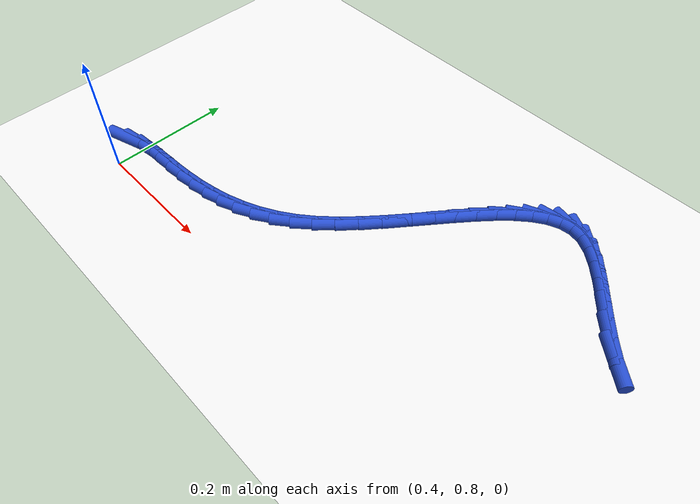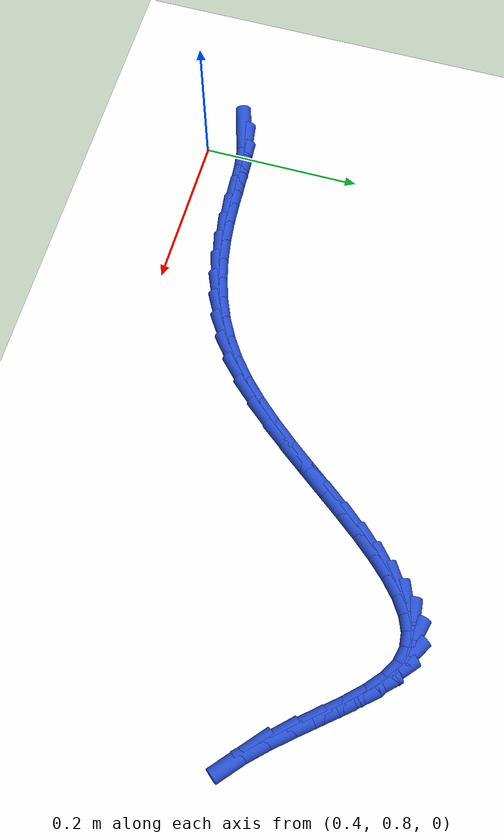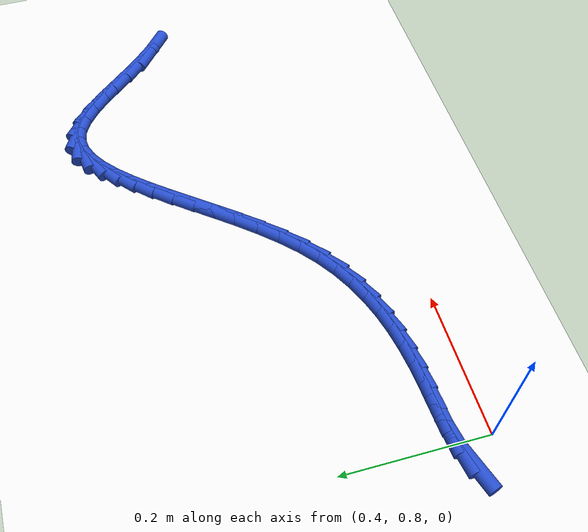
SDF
<sdf version="1.6">
 <world name="default">
  <model name="ground_plane">
   <static>1</static>
   <link name="link">
    <collision name="collision">
     <geometry><plane><normal>0 0 1</normal><size>100 100</size></plane></geometry>
     <surface><friction><ode><mu>100</mu><mu2>50</mu2></ode></friction></surface>
    </collision>
    <visual name="visual">
     <cast_shadows>0</cast_shadows>
     <geometry><plane><normal>0 0 1</normal><size>100 100</size></plane></geometry>
     <material>
      <script><uri>file://media/materials/scripts/gazebo.material</uri><name>Gazebo/WhiteGlow</name></script>
     </material>
    </visual>
   </link>
  </model>
  <model name="line">
   <link name="link_33">
    <pose>0.37016807281565056 0.8406246062417523 0.01 0 1.57 0.30742820067817783</pose>
    <collision name="collision">
     <geometry><cylinder><radius>0.01</radius><length>0.08</length></cylinder></geometry>
    </collision>
    <visual name="visual">
     <material>
      <script><name>Gazebo/Blue</name><uri>file://media/materials/scripts/gazebo.material</uri></script>
     </material>
     <geometry><cylinder><radius>0.01</radius><length>0.08</length></cylinder></geometry>
    </visual>
   </link>
   <link name="link_34">
    <pose>0.3957222099236863 0.8487378950800001 0.01 0 1.57 0.15746452261961666</pose>
    <collision name="collision">
     <geometry><cylinder><radius>0.01</radius><length>0.08</length></cylinder></geometry>
    </collision>
    <visual name="visual">
     <material>
      <script><name>Gazebo/Blue</name><uri>file://media/materials/scripts/gazebo.material</uri></script>
     </material>
     <geometry><cylinder><radius>0.01</radius><length>0.08</length></cylinder></geometry>
    </visual>
   </link>
   <link name="link_35">
    <pose>0.42321564034355014 0.8531032747310413 0.01 0 1.57 0.07446712019785998</pose>
    <collision name="collision">
     <geometry><cylinder><radius>0.01</radius><length>0.08</length></cylinder></geometry>
    </collision>
    <visual name="visual">
     <material>
      <script><name>Gazebo/Blue</name><uri>file://media/materials/scripts/gazebo.material</uri></script>
     </material>
     <geometry><cylinder><radius>0.01</radius><length>0.08</length></cylinder></geometry>
    </visual>
   </link>
   <link name="link_36">
    <pose>0.4518892538551447 0.8552424718177919 0.01 0 1.57 0.050892062239397115</pose>
    <collision name="collision">
     <geometry><cylinder><radius>0.01</radius><length>0.08</length></cylinder></geometry>
    </collision>
    <visual name="visual">
     <material>
      <script><name>Gazebo/Blue</name><uri>file://media/materials/scripts/gazebo.material</uri></script>
     </material>
     <geometry><cylinder><radius>0.01</radius><length>0.08</length></cylinder></geometry>
    </visual>
   </link>
   <link name="link_37">
    <pose>0.48096151383033836 0.8567232977500642 0.01 0 1.57 0.07739948501117896</pose>
    <collision name="collision">
     <geometry><cylinder><radius>0.01</radius><length>0.08</length></cylinder></geometry>
    </collision>
    <visual name="visual">
     <material>
      <script><name>Gazebo/Blue</name><uri>file://media/materials/scripts/gazebo.material</uri></script>
     </material>
     <geometry><cylinder><radius>0.01</radius><length>0.08</length></cylinder></geometry>
    </visual>
   </link>
   <link name="link_38">
    <pose>0.5097420762956917 0.8589553574296377 0.01 0 1.57 0.12423607483211829</pose>
    <collision name="collision">
     <geometry><cylinder><radius>0.01</radius><length>0.08</length></cylinder></geometry>
    </collision>
    <visual name="visual">
     <material>
      <script><name>Gazebo/Blue</name><uri>file://media/materials/scripts/gazebo.material</uri></script>
     </material>
     <geometry><cylinder><radius>0.01</radius><length>0.08</length></cylinder></geometry>
    </visual>
   </link>
   <link name="link_39">
    <pose>0.5380360648602363 0.8624886887642992 0.01 0 1.57 0.1813582369269799</pose>
    <collision name="collision">
     <geometry><cylinder><radius>0.01</radius><length>0.08</length></cylinder></geometry>
    </collision>
    <visual name="visual">
     <material>
      <script><name>Gazebo/Blue</name><uri>file://media/materials/scripts/gazebo.material</uri></script>
     </material>
     <geometry><cylinder><radius>0.01</radius><length>0.08</length></cylinder></geometry>
    </visual>
   </link>
   <link name="link_40">
    <pose>0.565816072054605 0.8675827944934003 0.01 0 1.57 0.24858504470689932</pose>
    <collision name="collision">
     <geometry><cylinder><radius>0.01</radius><length>0.08</length></cylinder></geometry>
    </collision>
    <visual name="visual">
     <material>
      <script><name>Gazebo/Blue</name><uri>file://media/materials/scripts/gazebo.material</uri></script>
     </material>
     <geometry><cylinder><radius>0.01</radius><length>0.08</length></cylinder></geometry>
    </visual>
   </link>
   <link name="link_41">
    <pose>0.5930548217666788 0.8744969494698323 0.01 0 1.57 0.3252360091168759</pose>
    <collision name="collision">
     <geometry><cylinder><radius>0.01</radius><length>0.08</length></cylinder></geometry>
    </collision>
    <visual name="visual">
     <material>
      <script><name>Gazebo/Blue</name><uri>file://media/materials/scripts/gazebo.material</uri></script>
     </material>
     <geometry><cylinder><radius>0.01</radius><length>0.08</length></cylinder></geometry>
    </visual>
   </link>
   <link name="link_42">
    <pose>0.6197250378843372 0.8834904285464852 0.01 0 1.57 0.4099783017791297</pose>
    <collision name="collision">
     <geometry><cylinder><radius>0.01</radius><length>0.08</length></cylinder></geometry>
    </collision>
    <visual name="visual">
     <material>
      <script><name>Gazebo/Blue</name><uri>file://media/materials/scripts/gazebo.material</uri></script>
     </material>
     <geometry><cylinder><radius>0.01</radius><length>0.08</length></cylinder></geometry>
    </visual>
   </link>
   <link name="link_43">
    <pose>0.6457994442954605 0.8948225065762505 0.01 0 1.57 0.5007813374077364</pose>
    <collision name="collision">
     <geometry><cylinder><radius>0.01</radius><length>0.08</length></cylinder></geometry>
    </collision>
    <visual name="visual">
     <material>
      <script><name>Gazebo/Blue</name><uri>file://media/materials/scripts/gazebo.material</uri></script>
     </material>
     <geometry><cylinder><radius>0.01</radius><length>0.08</length></cylinder></geometry>
    </visual>
   </link>
   <link name="link_44">
    <pose>0.6712507648879287 0.9087524584120191 0.01 0 1.57 0.5950353151412616</pose>
    <collision name="collision">
     <geometry><cylinder><radius>0.01</radius><length>0.08</length></cylinder></geometry>
    </collision>
    <visual name="visual">
     <material>
      <script><name>Gazebo/Blue</name><uri>file://media/materials/scripts/gazebo.material</uri></script>
     </material>
     <geometry><cylinder><radius>0.01</radius><length>0.08</length></cylinder></geometry>
    </visual>
   </link>
   <link name="link_45">
    <pose>0.6960517235496214 0.9255395589066813 0.01 0 1.57 0.6896536188897094</pose>
    <collision name="collision">
     <geometry><cylinder><radius>0.01</radius><length>0.08</length></cylinder></geometry>
    </collision>
    <visual name="visual">
     <material>
      <script><name>Gazebo/Blue</name><uri>file://media/materials/scripts/gazebo.material</uri></script>
     </material>
     <geometry><cylinder><radius>0.01</radius><length>0.08</length></cylinder></geometry>
    </visual>
   </link>
   <link name="link_46">
    <pose>0.7201756261140797 0.9454358426621609 0.01 0 1.57 0.7730505174797482</pose>
    <collision name="collision">
     <geometry><cylinder><radius>0.01</radius><length>0.08</length></cylinder></geometry>
    </collision>
    <visual name="visual">
     <material>
      <script><name>Gazebo/Blue</name><uri>file://media/materials/scripts/gazebo.material</uri></script>
     </material>
     <geometry><cylinder><radius>0.01</radius><length>0.08</length></cylinder></geometry>
    </visual>
   </link>
   <link name="link_47">
    <pose>0.743626238971905 0.9683143706190532 0.01 0 1.57 0.8343226368081349</pose>
    <collision name="collision">
     <geometry><cylinder><radius>0.01</radius><length>0.08</length></cylinder></geometry>
    </collision>
    <visual name="visual">
     <material>
      <script><name>Gazebo/Blue</name><uri>file://media/materials/scripts/gazebo.material</uri></script>
     </material>
     <geometry><cylinder><radius>0.01</radius><length>0.08</length></cylinder></geometry>
    </visual>
   </link>
   <link name="link_48">
    <pose>0.7664521441412894 0.9934906320872209 0.01 0 1.57 0.8768088855084678</pose>
    <collision name="collision">
     <geometry><cylinder><radius>0.01</radius><length>0.08</length></cylinder></geometry>
    </collision>
    <visual name="visual">
     <material>
      <script><name>Gazebo/Blue</name><uri>file://media/materials/scripts/gazebo.material</uri></script>
     </material>
     <geometry><cylinder><radius>0.01</radius><length>0.08</length></cylinder></geometry>
    </visual>
   </link>
   <link name="link_49">
    <pose>0.7887055114629061 1.0202354786432424 0.01 0 1.57 0.903491809310568</pose>
    <collision name="collision">
     <geometry><cylinder><radius>0.01</radius><length>0.08</length></cylinder></geometry>
    </collision>
    <visual name="visual">
     <material>
      <script><name>Gazebo/Blue</name><uri>file://media/materials/scripts/gazebo.material</uri></script>
     </material>
     <geometry><cylinder><radius>0.01</radius><length>0.08</length></cylinder></geometry>
    </visual>
   </link>
   <link name="link_50">
    <pose>0.810438510777429 1.0478197618636964 0.01 0 1.57 0.915979554030327</pose>
    <collision name="collision">
     <geometry><cylinder><radius>0.01</radius><length>0.08</length></cylinder></geometry>
    </collision>
    <visual name="visual">
     <material>
      <script><name>Gazebo/Blue</name><uri>file://media/materials/scripts/gazebo.material</uri></script>
     </material>
     <geometry><cylinder><radius>0.01</radius><length>0.08</length></cylinder></geometry>
    </visual>
   </link>
   <link name="link_51">
    <pose>0.8317033119255306 1.075514333325161 0.01 0 1.57 0.914606592212624</pose>
    <collision name="collision">
     <geometry><cylinder><radius>0.01</radius><length>0.08</length></cylinder></geometry>
    </collision>
    <visual name="visual">
     <material>
      <script><name>Gazebo/Blue</name><uri>file://media/materials/scripts/gazebo.material</uri></script>
     </material>
     <geometry><cylinder><radius>0.01</radius><length>0.08</length></cylinder></geometry>
    </visual>
   </link>
   <link name="link_52">
    <pose>0.852552084747885 1.1025900446042158 0.01 0 1.57 0.8983644470001207</pose>
    <collision name="collision">
     <geometry><cylinder><radius>0.01</radius><length>0.08</length></cylinder></geometry>
    </collision>
    <visual name="visual">
     <material>
      <script><name>Gazebo/Blue</name><uri>file://media/materials/scripts/gazebo.material</uri></script>
     </material>
     <geometry><cylinder><radius>0.01</radius><length>0.08</length></cylinder></geometry>
    </visual>
   </link>
   <link name="link_53">
    <pose>0.8730369990851651 1.1283177472774386 0.01 0 1.57 0.8645800655813473</pose>
    <collision name="collision">
     <geometry><cylinder><radius>0.01</radius><length>0.08</length></cylinder></geometry>
    </collision>
    <visual name="visual">
     <material>
      <script><name>Gazebo/Blue</name><uri>file://media/materials/scripts/gazebo.material</uri></script>
     </material>
     <geometry><cylinder><radius>0.01</radius><length>0.08</length></cylinder></geometry>
    </visual>
   </link>
   <link name="link_54">
    <pose>0.8932102247780446 1.1519682929214088 0.01 0 1.57 0.8082249184652066</pose>
    <collision name="collision">
     <geometry><cylinder><radius>0.01</radius><length>0.08</length></cylinder></geometry>
    </collision>
    <visual name="visual">
     <material>
      <script><name>Gazebo/Blue</name><uri>file://media/materials/scripts/gazebo.material</uri></script>
     </material>
     <geometry><cylinder><radius>0.01</radius><length>0.08</length></cylinder></geometry>
    </visual>
   </link>
   <link name="link_55">
    <pose>0.9131239316671964 1.1728125331127044 0.01 0 1.57 0.720715799810971</pose>
    <collision name="collision">
     <geometry><cylinder><radius>0.01</radius><length>0.08</length></cylinder></geometry>
    </collision>
    <visual name="visual">
     <material>
      <script><name>Gazebo/Blue</name><uri>file://media/materials/scripts/gazebo.material</uri></script>
     </material>
     <geometry><cylinder><radius>0.01</radius><length>0.08</length></cylinder></geometry>
    </visual>
   </link>
   <link name="link_56">
    <pose>0.9328302895932938 1.190121319427904 0.01 0 1.57 0.588358914141903</pose>
    <collision name="collision">
     <geometry><cylinder><radius>0.01</radius><length>0.08</length></cylinder></geometry>
    </collision>
    <visual name="visual">
     <material>
      <script><name>Gazebo/Blue</name><uri>file://media/materials/scripts/gazebo.material</uri></script>
     </material>
     <geometry><cylinder><radius>0.01</radius><length>0.08</length></cylinder></geometry>
    </visual>
   </link>
   <link name="link_57">
    <pose>0.9523814683970105 1.2031655034435866 0.01 0 1.57 0.3924681050909312</pose>
    <collision name="collision">
     <geometry><cylinder><radius>0.01</radius><length>0.08</length></cylinder></geometry>
    </collision>
    <visual name="visual">
     <material>
      <script><name>Gazebo/Blue</name><uri>file://media/materials/scripts/gazebo.material</uri></script>
     </material>
     <geometry><cylinder><radius>0.01</radius><length>0.08</length></cylinder></geometry>
    </visual>
   </link>
   <link name="link_58">
    <pose>0.9718296379190196 1.211215936736331 0.01 0 1.57 0.11942153332450568</pose>
    <collision name="collision">
     <geometry><cylinder><radius>0.01</radius><length>0.08</length></cylinder></geometry>
    </collision>
    <visual name="visual">
     <material>
      <script><name>Gazebo/Blue</name><uri>file://media/materials/scripts/gazebo.material</uri></script>
     </material>
     <geometry><cylinder><radius>0.01</radius><length>0.08</length></cylinder></geometry>
    </visual>
   </link>
   <link name="link_59">
    <pose>0.9912269679999947 1.213543470882716 0.01 0 1.57 -0.20945573124398648</pose>
    <collision name="collision">
     <geometry><cylinder><radius>0.01</radius><length>0.08</length></cylinder></geometry>
    </collision>
    <visual name="visual">
     <material>
      <script><name>Gazebo/Blue</name><uri>file://media/materials/scripts/gazebo.material</uri></script>
     </material>
     <geometry><cylinder><radius>0.01</radius><length>0.08</length></cylinder></geometry>
    </visual>
   </link>
   <link name="link_60">
    <pose>1.0106256419870983 1.2094198265552434 0.01 0 1.57 -0.5058337807228935</pose>
    <collision name="collision">
     <geometry><cylinder><radius>0.01</radius><length>0.08</length></cylinder></geometry>
    </collision>
    <visual name="visual">
     <material>
      <script><name>Gazebo/Blue</name><uri>file://media/materials/scripts/gazebo.material</uri></script>
     </material>
     <geometry><cylinder><radius>0.01</radius><length>0.08</length></cylinder></geometry>
    </visual>
   </link>
   <link name="link_61">
    <pose>1.0300859864046774 1.1986407097453744 0.01 0 1.57 -0.6914553878536778</pose>
    <collision name="collision">
     <geometry><cylinder><radius>0.01</radius><length>0.08</length></cylinder></geometry>
    </collision>
    <visual name="visual">
     <material>
      <script><name>Gazebo/Blue</name><uri>file://media/materials/scripts/gazebo.material</uri></script>
     </material>
     <geometry><cylinder><radius>0.01</radius><length>0.08</length></cylinder></geometry>
    </visual>
   </link>
   <link name="link_62">
    <pose>1.04969025203477 1.1824125766834868 0.01 0 1.57 -0.7954201180225066</pose>
    <collision name="collision">
     <geometry><cylinder><radius>0.01</radius><length>0.08</length></cylinder></geometry>
    </collision>
    <visual name="visual">
     <material>
      <script><name>Gazebo/Blue</name><uri>file://media/materials/scripts/gazebo.material</uri></script>
     </material>
     <geometry><cylinder><radius>0.01</radius><length>0.08</length></cylinder></geometry>
    </visual>
   </link>
   <link name="link_63">
    <pose>1.0695243419502727 1.1621768958988958 0.01 0 1.57 -0.8470625001300783</pose>
    <collision name="collision">
     <geometry><cylinder><radius>0.01</radius><length>0.08</length></cylinder></geometry>
    </collision>
    <visual name="visual">
     <material>
      <script><name>Gazebo/Blue</name><uri>file://media/materials/scripts/gazebo.material</uri></script>
     </material>
     <geometry><cylinder><radius>0.01</radius><length>0.08</length></cylinder></geometry>
    </visual>
   </link>
   <link name="link_64">
    <pose>1.089674159224083 1.139375135920917 0.01 0 1.57 -0.8611318258141664</pose>
    <collision name="collision">
     <geometry><cylinder><radius>0.01</radius><length>0.08</length></cylinder></geometry>
    </collision>
    <visual name="visual">
     <material>
      <script><name>Gazebo/Blue</name><uri>file://media/materials/scripts/gazebo.material</uri></script>
     </material>
     <geometry><cylinder><radius>0.01</radius><length>0.08</length></cylinder></geometry>
    </visual>
   </link>
   <link name="link_65">
    <pose>1.110225606929098 1.1154487652788665 0.01 0 1.57 -0.8429073170418129</pose>
    <collision name="collision">
     <geometry><cylinder><radius>0.01</radius><length>0.08</length></cylinder></geometry>
    </collision>
    <visual name="visual">
     <material>
      <script><name>Gazebo/Blue</name><uri>file://media/materials/scripts/gazebo.material</uri></script>
     </material>
     <geometry><cylinder><radius>0.01</radius><length>0.08</length></cylinder></geometry>
    </visual>
   </link>
   <link name="link_66">
    <pose>1.1312645881382144 1.091839252502059 0.01 0 1.57 -0.7908916377381817</pose>
    <collision name="collision">
     <geometry><cylinder><radius>0.01</radius><length>0.08</length></cylinder></geometry>
    </collision>
    <visual name="visual">
     <material>
      <script><name>Gazebo/Blue</name><uri>file://media/materials/scripts/gazebo.material</uri></script>
     </material>
     <geometry><cylinder><radius>0.01</radius><length>0.08</length></cylinder></geometry>
    </visual>
   </link>
   <link name="link_67">
    <pose>1.1528770059243294 1.069988066119811 0.01 0 1.57 -0.697160447937442</pose>
    <collision name="collision">
     <geometry><cylinder><radius>0.01</radius><length>0.08</length></cylinder></geometry>
    </collision>
    <visual name="visual">
     <material>
      <script><name>Gazebo/Blue</name><uri>file://media/materials/scripts/gazebo.material</uri></script>
     </material>
     <geometry><cylinder><radius>0.01</radius><length>0.08</length></cylinder></geometry>
    </visual>
   </link>
  </model>
 </world>
</sdf>
